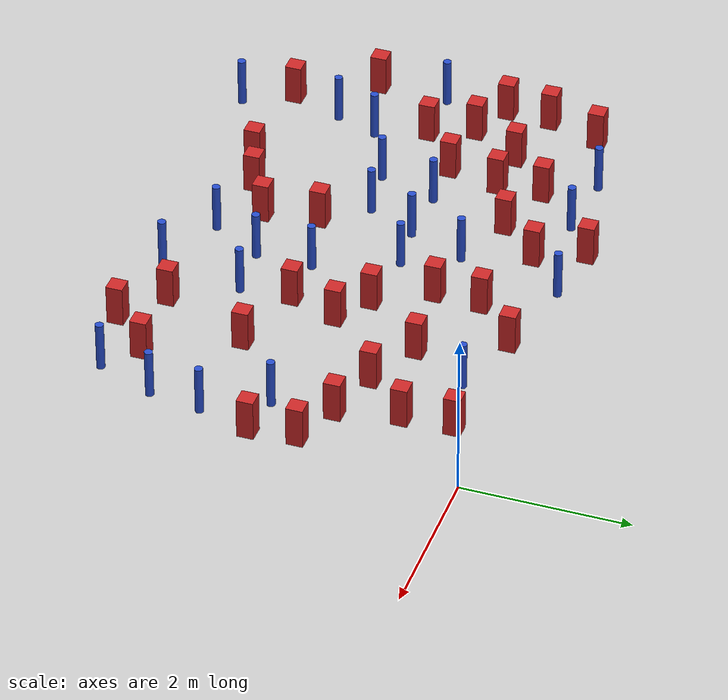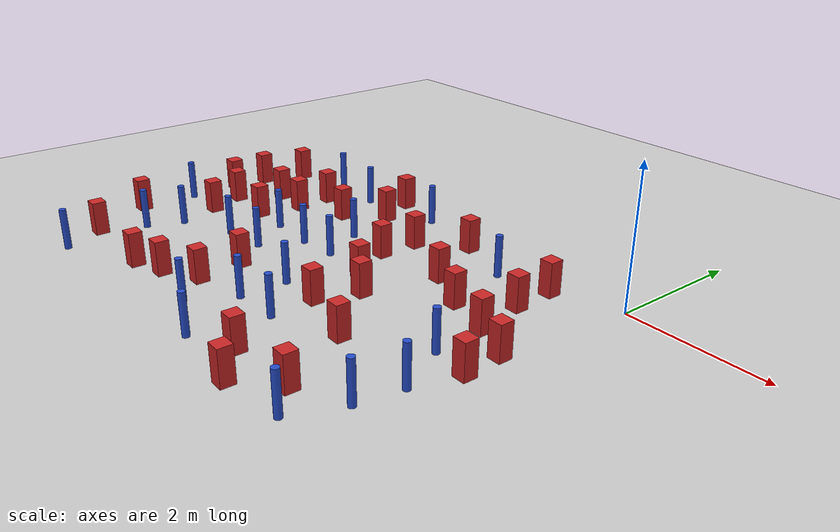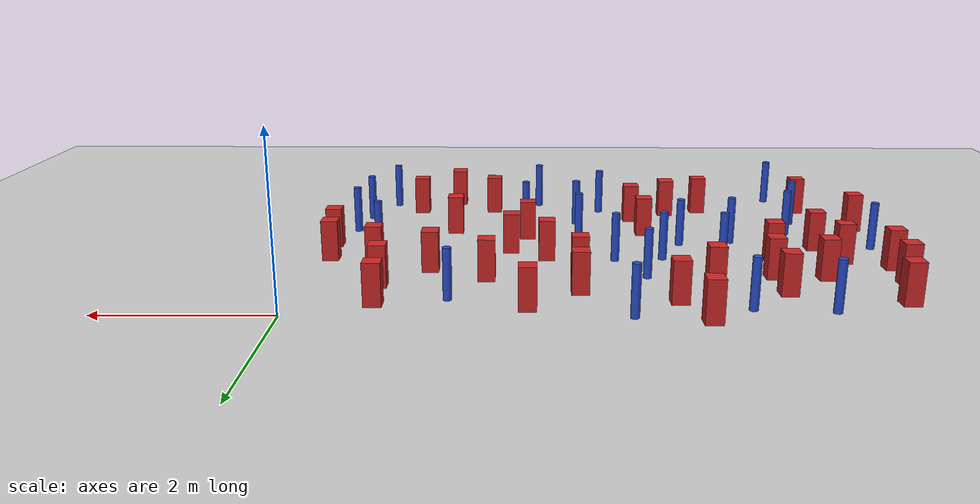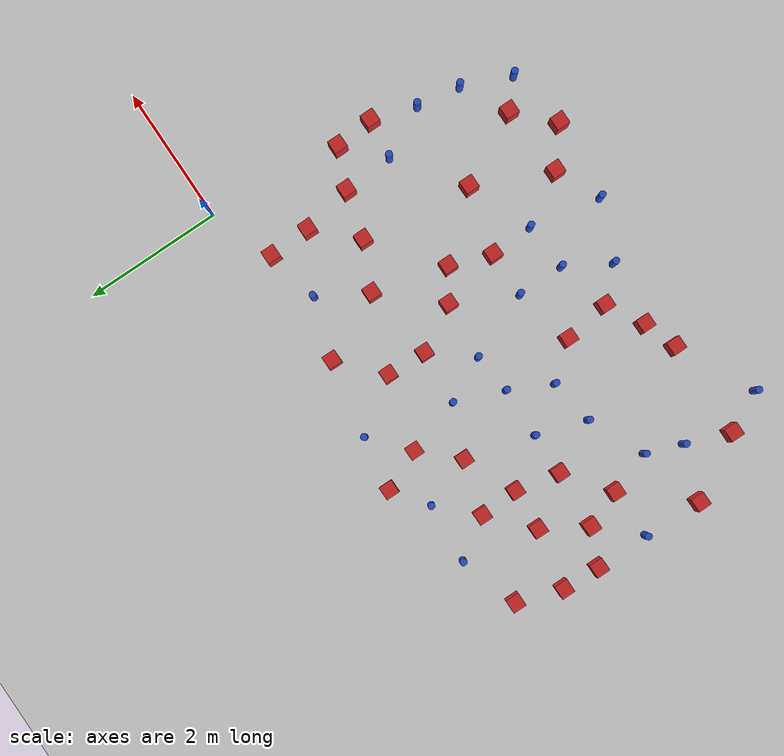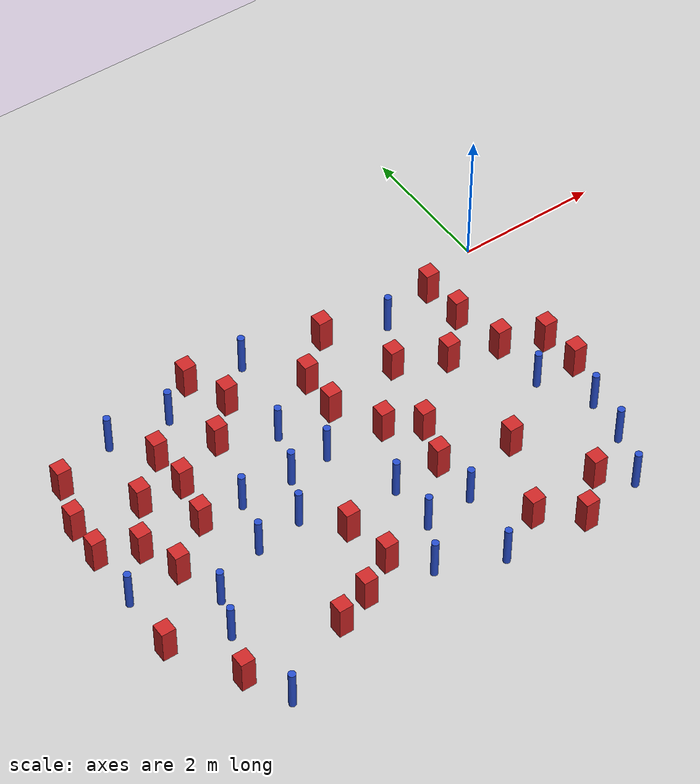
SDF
<sdf version="1.6">
 <world name="default">
  <model name="ground_plane">
   <static>1</static>
   <link name="link">
    <collision name="collision">
     <geometry><plane><normal>0 0 1</normal><size>100 100</size></plane></geometry>
     <surface><friction><ode><mu>100</mu><mu2>50</mu2></ode></friction></surface>
    </collision>
    <visual name="visual">
     <cast_shadows>0</cast_shadows>
     <geometry><plane><normal>0 0 1</normal><size>100 100</size></plane></geometry>
     <material>
      <ambient>1.0 1.0 1.0 1.0</ambient>
      <diffuse>0.8 0.8 0.8 1.0</diffuse>
      <specular>0.01 0.01 0.01 1.000000</specular>
     </material>
    </visual>
   </link>
  </model>
  <model name="square_post_obstacle0">
   <static>true</static>
   <pose>-1.66363238739 -3.12677479647 -4.36207812815e-07 3.75137919937e-06 9.77721102514e-07 2.47381364184e-05</pose>
   <link name="link">
    <pose>0 0 0.25 0 -0 0</pose>
    <inertial>
     <mass>100</mass>
     <inertia>
      <ixx>0.166667</ixx>
      <ixy>0</ixy>
      <ixz>0</ixz>
      <iyy>0.166667</iyy>
      <iyz>0</iyz>
      <izz>0.166667</izz>
     </inertia>
    </inertial>
    <collision name="collision"><geometry><box><size>.2 .2 .5</size></box></geometry></collision>
    <visual name="visual">
     <geometry><box><size>.2 .2 .5</size></box></geometry>
     <material>
      <script><name>Gazebo/Red</name><uri>file://media/materials/scripts/gazebo.material</uri></script>
     </material>
    </visual>
   </link>
  </model>
  <model name="square_post_obstacle5">
   <static>true</static>
   <pose>-6.45985207222 -4.20283826774 -4.36207812815e-07 3.75137919937e-06 9.77721102514e-07 2.47381364184e-05</pose>
   <link name="link">
    <pose>0 0 0.25 0 -0 0</pose>
    <inertial>
     <mass>100</mass>
     <inertia>
      <ixx>0.166667</ixx>
      <ixy>0</ixy>
      <ixz>0</ixz>
      <iyy>0.166667</iyy>
      <iyz>0</iyz>
      <izz>0.166667</izz>
     </inertia>
    </inertial>
    <collision name="collision"><geometry><box><size>.2 .2 .5</size></box></geometry></collision>
    <visual name="visual">
     <geometry><box><size>.2 .2 .5</size></box></geometry>
     <material>
      <script><name>Gazebo/Red</name><uri>file://media/materials/scripts/gazebo.material</uri></script>
     </material>
    </visual>
   </link>
  </model>
  <model name="square_post_obstacle11">
   <static>true</static>
   <pose>-3.21177201463 -1.34164451892 -4.36207812815e-07 3.75137919937e-06 9.77721102514e-07 2.47381364184e-05</pose>
   <link name="link">
    <pose>0 0 0.25 0 -0 0</pose>
    <inertial>
     <mass>100</mass>
     <inertia>
      <ixx>0.166667</ixx>
      <ixy>0</ixy>
      <ixz>0</ixz>
      <iyy>0.166667</iyy>
      <iyz>0</iyz>
      <izz>0.166667</izz>
     </inertia>
    </inertial>
    <collision name="collision"><geometry><box><size>.2 .2 .5</size></box></geometry></collision>
    <visual name="visual">
     <geometry><box><size>.2 .2 .5</size></box></geometry>
     <material>
      <script><name>Gazebo/Red</name><uri>file://media/materials/scripts/gazebo.material</uri></script>
     </material>
    </visual>
   </link>
  </model>
  <model name="pole_obstacle14">
   <static>true</static>
   <pose>-3.64864433912 -4.18007978093 -3.09024884793e-07 -7.19054271912e-07 -2.11315075134e-07 -1.93935509266e-07</pose>
   <link name="link">
    <pose>0 0 0.3 0 -0 0</pose>
    <inertial>
     <mass>1</mass>
     <inertia><ixx>0.145833</ixx><ixy>0</ixy><ixz>0</ixz><iyy>0.145833</iyy><iyz>0</iyz><izz>0.125</izz></inertia>
    </inertial>
    <collision name="collision">
     <geometry><cylinder><radius>0.05</radius><length>.6</length></cylinder></geometry>
    </collision>
    <visual name="visual">
     <geometry><cylinder><radius>0.05</radius><length>.6</length></cylinder></geometry>
     <material>
      <script><name>Gazebo/Blue</name><uri>file://media/materials/scripts/gazebo.material</uri></script>
     </material>
    </visual>
   </link>
  </model>
  <model name="square_post_obstacle12">
   <static>true</static>
   <pose>-4.57360559203 -4.0499223594 -4.36207812815e-07 3.75137919937e-06 9.77721102514e-07 2.47381364184e-05</pose>
   <link name="link">
    <pose>0 0 0.25 0 -0 0</pose>
    <inertial>
     <mass>100</mass>
     <inertia>
      <ixx>0.166667</ixx>
      <ixy>0</ixy>
      <ixz>0</ixz>
      <iyy>0.166667</iyy>
      <iyz>0</iyz>
      <izz>0.166667</izz>
     </inertia>
    </inertial>
    <collision name="collision"><geometry><box><size>.2 .2 .5</size></box></geometry></collision>
    <visual name="visual">
     <geometry><box><size>.2 .2 .5</size></box></geometry>
     <material>
      <script><name>Gazebo/Red</name><uri>file://media/materials/scripts/gazebo.material</uri></script>
     </material>
    </visual>
   </link>
  </model>
  <model name="square_post_obstacle13">
   <static>true</static>
   <pose>-2.62023415638 -2.87275830465 -4.36207812815e-07 3.75137919937e-06 9.77721102514e-07 2.47381364184e-05</pose>
   <link name="link">
    <pose>0 0 0.25 0 -0 0</pose>
    <inertial>
     <mass>100</mass>
     <inertia>
      <ixx>0.166667</ixx>
      <ixy>0</ixy>
      <ixz>0</ixz>
      <iyy>0.166667</iyy>
      <iyz>0</iyz>
      <izz>0.166667</izz>
     </inertia>
    </inertial>
    <collision name="collision"><geometry><box><size>.2 .2 .5</size></box></geometry></collision>
    <visual name="visual">
     <geometry><box><size>.2 .2 .5</size></box></geometry>
     <material>
      <script><name>Gazebo/Red</name><uri>file://media/materials/scripts/gazebo.material</uri></script>
     </material>
    </visual>
   </link>
  </model>
  <model name="pole_obstacle21">
   <static>true</static>
   <pose>-2.80080425089 -4.53551060787 -3.09024884793e-07 -7.19054271912e-07 -2.11315075134e-07 -1.93935509266e-07</pose>
   <link name="link">
    <pose>0 0 0.3 0 -0 0</pose>
    <inertial>
     <mass>1</mass>
     <inertia><ixx>0.145833</ixx><ixy>0</ixy><ixz>0</ixz><iyy>0.145833</iyy><iyz>0</iyz><izz>0.125</izz></inertia>
    </inertial>
    <collision name="collision">
     <geometry><cylinder><radius>0.05</radius><length>.6</length></cylinder></geometry>
    </collision>
    <visual name="visual">
     <geometry><cylinder><radius>0.05</radius><length>.6</length></cylinder></geometry>
     <material>
      <script><name>Gazebo/Blue</name><uri>file://media/materials/scripts/gazebo.material</uri></script>
     </material>
    </visual>
   </link>
  </model>
  <model name="pole_obstacle24">
   <static>true</static>
   <pose>-1.72728421698 -0.518795387424 -3.09024884793e-07 -7.19054271912e-07 -2.11315075135e-07 -1.93935509266e-07</pose>
   <link name="link">
    <pose>0 0 0.3 0 -0 0</pose>
    <inertial>
     <mass>1</mass>
     <inertia><ixx>0.145833</ixx><ixy>0</ixy><ixz>0</ixz><iyy>0.145833</iyy><iyz>0</iyz><izz>0.125</izz></inertia>
    </inertial>
    <collision name="collision">
     <geometry><cylinder><radius>0.05</radius><length>.6</length></cylinder></geometry>
    </collision>
    <visual name="visual">
     <geometry><cylinder><radius>0.05</radius><length>.6</length></cylinder></geometry>
     <material>
      <script><name>Gazebo/Blue</name><uri>file://media/materials/scripts/gazebo.material</uri></script>
     </material>
    </visual>
   </link>
  </model>
  <model name="pole_obstacle28">
   <static>true</static>
   <pose>-0.349268798113 -3.16335764836 -3.09024884793e-07 -7.19054271912e-07 -2.11315075129e-07 -1.93935509263e-07</pose>
   <link name="link">
    <pose>0 0 0.3 0 -0 0</pose>
    <inertial>
     <mass>1</mass>
     <inertia><ixx>0.145833</ixx><ixy>0</ixy><ixz>0</ixz><iyy>0.145833</iyy><iyz>0</iyz><izz>0.125</izz></inertia>
    </inertial>
    <collision name="collision">
     <geometry><cylinder><radius>0.05</radius><length>.6</length></cylinder></geometry>
    </collision>
    <visual name="visual">
     <geometry><cylinder><radius>0.05</radius><length>.6</length></cylinder></geometry>
     <material>
      <script><name>Gazebo/Blue</name><uri>file://media/materials/scripts/gazebo.material</uri></script>
     </material>
    </visual>
   </link>
  </model>
  <model name="square_post_obstacle25">
   <static>true</static>
   <pose>-5.05934929009 -4.2209491107 -4.36207812815e-07 3.75137919937e-06 9.77721102514e-07 2.47381364184e-05</pose>
   <link name="link">
    <pose>0 0 0.25 0 -0 0</pose>
    <inertial>
     <mass>100</mass>
     <inertia>
      <ixx>0.166667</ixx>
      <ixy>0</ixy>
      <ixz>0</ixz>
      <iyy>0.166667</iyy>
      <iyz>0</iyz>
      <izz>0.166667</izz>
     </inertia>
    </inertial>
    <collision name="collision"><geometry><box><size>.2 .2 .5</size></box></geometry></collision>
    <visual name="visual">
     <geometry><box><size>.2 .2 .5</size></box></geometry>
     <material>
      <script><name>Gazebo/Red</name><uri>file://media/materials/scripts/gazebo.material</uri></script>
     </material>
    </visual>
   </link>
  </model>
  <model name="pole_obstacle36">
   <static>true</static>
   <pose>-6.17183847004 -4.78934028438 -3.09024884793e-07 -7.19054271911e-07 -2.1131507516e-07 -1.93935509277e-07</pose>
   <link name="link">
    <pose>0 0 0.3 0 -0 0</pose>
    <inertial>
     <mass>1</mass>
     <inertia><ixx>0.145833</ixx><ixy>0</ixy><ixz>0</ixz><iyy>0.145833</iyy><iyz>0</iyz><izz>0.125</izz></inertia>
    </inertial>
    <collision name="collision">
     <geometry><cylinder><radius>0.05</radius><length>.6</length></cylinder></geometry>
    </collision>
    <visual name="visual">
     <geometry><cylinder><radius>0.05</radius><length>.6</length></cylinder></geometry>
     <material>
      <script><name>Gazebo/Blue</name><uri>file://media/materials/scripts/gazebo.material</uri></script>
     </material>
    </visual>
   </link>
  </model>
  <model name="square_post_obstacle33">
   <static>true</static>
   <pose>-6.709516114 -0.460691681215 -4.36207812815e-07 3.75137919937e-06 9.77721102514e-07 2.47381364184e-05</pose>
   <link name="link">
    <pose>0 0 0.25 0 -0 0</pose>
    <inertial>
     <mass>100</mass>
     <inertia>
      <ixx>0.166667</ixx>
      <ixy>0</ixy>
      <ixz>0</ixz>
      <iyy>0.166667</iyy>
      <iyz>0</iyz>
      <izz>0.166667</izz>
     </inertia>
    </inertial>
    <collision name="collision"><geometry><box><size>.2 .2 .5</size></box></geometry></collision>
    <visual name="visual">
     <geometry><box><size>.2 .2 .5</size></box></geometry>
     <material>
      <script><name>Gazebo/Red</name><uri>file://media/materials/scripts/gazebo.material</uri></script>
     </material>
    </visual>
   </link>
  </model>
  <model name="square_post_obstacle39">
   <static>true</static>
   <pose>-4.15075987012 -3.07539975549 -4.36207812815e-07 3.75137919937e-06 9.77721102514e-07 2.47381364184e-05</pose>
   <link name="link">
    <pose>0 0 0.25 0 -0 0</pose>
    <inertial>
     <mass>100</mass>
     <inertia>
      <ixx>0.166667</ixx>
      <ixy>0</ixy>
      <ixz>0</ixz>
      <iyy>0.166667</iyy>
      <iyz>0</iyz>
      <izz>0.166667</izz>
     </inertia>
    </inertial>
    <collision name="collision"><geometry><box><size>.2 .2 .5</size></box></geometry></collision>
    <visual name="visual">
     <geometry><box><size>.2 .2 .5</size></box></geometry>
     <material>
      <script><name>Gazebo/Red</name><uri>file://media/materials/scripts/gazebo.material</uri></script>
     </material>
    </visual>
   </link>
  </model>
  <model name="pole_obstacle56">
   <static>true</static>
   <pose>-6.22502900379 -3.57008033658 -3.09024884793e-07 -7.19054271912e-07 -2.11315075144e-07 -1.93935509269e-07</pose>
   <link name="link">
    <pose>0 0 0.3 0 -0 0</pose>
    <inertial>
     <mass>1</mass>
     <inertia><ixx>0.145833</ixx><ixy>0</ixy><ixz>0</ixz><iyy>0.145833</iyy><iyz>0</iyz><izz>0.125</izz></inertia>
    </inertial>
    <collision name="collision">
     <geometry><cylinder><radius>0.05</radius><length>.6</length></cylinder></geometry>
    </collision>
    <visual name="visual">
     <geometry><cylinder><radius>0.05</radius><length>.6</length></cylinder></geometry>
     <material>
      <script><name>Gazebo/Blue</name><uri>file://media/materials/scripts/gazebo.material</uri></script>
     </material>
    </visual>
   </link>
  </model>
  <model name="square_post_obstacle45">
   <static>true</static>
   <pose>-5.45975131816 -1.3115869335 -4.36207812815e-07 3.75137919937e-06 9.77721102514e-07 2.47381364184e-05</pose>
   <link name="link">
    <pose>0 0 0.25 0 -0 0</pose>
    <inertial>
     <mass>100</mass>
     <inertia>
      <ixx>0.166667</ixx>
      <ixy>0</ixy>
      <ixz>0</ixz>
      <iyy>0.166667</iyy>
      <iyz>0</iyz>
      <izz>0.166667</izz>
     </inertia>
    </inertial>
    <collision name="collision"><geometry><box><size>.2 .2 .5</size></box></geometry></collision>
    <visual name="visual">
     <geometry><box><size>.2 .2 .5</size></box></geometry>
     <material>
      <script><name>Gazebo/Red</name><uri>file://media/materials/scripts/gazebo.material</uri></script>
     </material>
    </visual>
   </link>
  </model>
  <model name="pole_obstacle60">
   <static>true</static>
   <pose>-3.99176292669 -1.28152382813 -3.09024884793e-07 -7.19054271912e-07 -2.11315075136e-07 -1.93935509266e-07</pose>
   <link name="link">
    <pose>0 0 0.3 0 -0 0</pose>
    <inertial>
     <mass>1</mass>
     <inertia><ixx>0.145833</ixx><ixy>0</ixy><ixz>0</ixz><iyy>0.145833</iyy><iyz>0</iyz><izz>0.125</izz></inertia>
    </inertial>
    <collision name="collision">
     <geometry><cylinder><radius>0.05</radius><length>.6</length></cylinder></geometry>
    </collision>
    <visual name="visual">
     <geometry><cylinder><radius>0.05</radius><length>.6</length></cylinder></geometry>
     <material>
      <script><name>Gazebo/Blue</name><uri>file://media/materials/scripts/gazebo.material</uri></script>
     </material>
    </visual>
   </link>
  </model>
  <model name="square_post_obstacle51">
   <static>true</static>
   <pose>-2.13102680768 -1.20516621205 -4.36207812815e-07 3.75137919937e-06 9.77721102514e-07 2.47381364184e-05</pose>
   <link name="link">
    <pose>0 0 0.25 0 -0 0</pose>
    <inertial>
     <mass>100</mass>
     <inertia>
      <ixx>0.166667</ixx>
      <ixy>0</ixy>
      <ixz>0</ixz>
      <iyy>0.166667</iyy>
      <iyz>0</iyz>
      <izz>0.166667</izz>
     </inertia>
    </inertial>
    <collision name="collision"><geometry><box><size>.2 .2 .5</size></box></geometry></collision>
    <visual name="visual">
     <geometry><box><size>.2 .2 .5</size></box></geometry>
     <material>
      <script><name>Gazebo/Red</name><uri>file://media/materials/scripts/gazebo.material</uri></script>
     </material>
    </visual>
   </link>
  </model>
  <model name="square_post_obstacle53">
   <static>true</static>
   <pose>-5.59745542909 -1.9447270351 -4.36207812815e-07 3.75137919937e-06 9.77721102514e-07 2.47381364184e-05</pose>
   <link name="link">
    <pose>0 0 0.25 0 -0 0</pose>
    <inertial>
     <mass>100</mass>
     <inertia>
      <ixx>0.166667</ixx>
      <ixy>0</ixy>
      <ixz>0</ixz>
      <iyy>0.166667</iyy>
      <iyz>0</iyz>
      <izz>0.166667</izz>
     </inertia>
    </inertial>
    <collision name="collision"><geometry><box><size>.2 .2 .5</size></box></geometry></collision>
    <visual name="visual">
     <geometry><box><size>.2 .2 .5</size></box></geometry>
     <material>
      <script><name>Gazebo/Red</name><uri>file://media/materials/scripts/gazebo.material</uri></script>
     </material>
    </visual>
   </link>
  </model>
  <model name="square_post_obstacle58">
   <static>true</static>
   <pose>-1.46072311342 -1.5189008634 -4.36207812815e-07 3.75137919937e-06 9.77721102514e-07 2.47381364184e-05</pose>
   <link name="link">
    <pose>0 0 0.25 0 -0 0</pose>
    <inertial>
     <mass>100</mass>
     <inertia>
      <ixx>0.166667</ixx>
      <ixy>0</ixy>
      <ixz>0</ixz>
      <iyy>0.166667</iyy>
      <iyz>0</iyz>
      <izz>0.166667</izz>
     </inertia>
    </inertial>
    <collision name="collision"><geometry><box><size>.2 .2 .5</size></box></geometry></collision>
    <visual name="visual">
     <geometry><box><size>.2 .2 .5</size></box></geometry>
     <material>
      <script><name>Gazebo/Red</name><uri>file://media/materials/scripts/gazebo.material</uri></script>
     </material>
    </visual>
   </link>
  </model>
  <model name="square_post_obstacle59">
   <static>true</static>
   <pose>-2.59360439712 -0.243297136164 -4.36207812815e-07 3.75137919937e-06 9.77721102514e-07 2.47381364184e-05</pose>
   <link name="link">
    <pose>0 0 0.25 0 -0 0</pose>
    <inertial>
     <mass>100</mass>
     <inertia>
      <ixx>0.166667</ixx>
      <ixy>0</ixy>
      <ixz>0</ixz>
      <iyy>0.166667</iyy>
      <iyz>0</iyz>
      <izz>0.166667</izz>
     </inertia>
    </inertial>
    <collision name="collision"><geometry><box><size>.2 .2 .5</size></box></geometry></collision>
    <visual name="visual">
     <geometry><box><size>.2 .2 .5</size></box></geometry>
     <material>
      <script><name>Gazebo/Red</name><uri>file://media/materials/scripts/gazebo.material</uri></script>
     </material>
    </visual>
   </link>
  </model>
  <model name="square_post_obstacle62">
   <static>true</static>
   <pose>-4.05167921812 -3.74811377901 -4.36207812815e-07 3.75137919937e-06 9.77721102514e-07 2.47381364184e-05</pose>
   <link name="link">
    <pose>0 0 0.25 0 -0 0</pose>
    <inertial>
     <mass>100</mass>
     <inertia>
      <ixx>0.166667</ixx>
      <ixy>0</ixy>
      <ixz>0</ixz>
      <iyy>0.166667</iyy>
      <iyz>0</iyz>
      <izz>0.166667</izz>
     </inertia>
    </inertial>
    <collision name="collision"><geometry><box><size>.2 .2 .5</size></box></geometry></collision>
    <visual name="visual">
     <geometry><box><size>.2 .2 .5</size></box></geometry>
     <material>
      <script><name>Gazebo/Red</name><uri>file://media/materials/scripts/gazebo.material</uri></script>
     </material>
    </visual>
   </link>
  </model>
  <model name="pole_obstacle77">
   <static>true</static>
   <pose>-3.28531456576 -2.87144950809 -3.09024884793e-07 -7.19054271912e-07 -2.11315075128e-07 -1.93935509262e-07</pose>
   <link name="link">
    <pose>0 0 0.3 0 -0 0</pose>
    <inertial>
     <mass>1</mass>
     <inertia><ixx>0.145833</ixx><ixy>0</ixy><ixz>0</ixz><iyy>0.145833</iyy><iyz>0</iyz><izz>0.125</izz></inertia>
    </inertial>
    <collision name="collision">
     <geometry><cylinder><radius>0.05</radius><length>.6</length></cylinder></geometry>
    </collision>
    <visual name="visual">
     <geometry><cylinder><radius>0.05</radius><length>.6</length></cylinder></geometry>
     <material>
      <script><name>Gazebo/Blue</name><uri>file://media/materials/scripts/gazebo.material</uri></script>
     </material>
    </visual>
   </link>
  </model>
  <model name="square_post_obstacle67">
   <static>true</static>
   <pose>-1.6345298018 -4.63993090161 -4.36207812815e-07 3.75137919937e-06 9.77721102514e-07 2.47381364184e-05</pose>
   <link name="link">
    <pose>0 0 0.25 0 -0 0</pose>
    <inertial>
     <mass>100</mass>
     <inertia>
      <ixx>0.166667</ixx>
      <ixy>0</ixy>
      <ixz>0</ixz>
      <iyy>0.166667</iyy>
      <iyz>0</iyz>
      <izz>0.166667</izz>
     </inertia>
    </inertial>
    <collision name="collision"><geometry><box><size>.2 .2 .5</size></box></geometry></collision>
    <visual name="visual">
     <geometry><box><size>.2 .2 .5</size></box></geometry>
     <material>
      <script><name>Gazebo/Red</name><uri>file://media/materials/scripts/gazebo.material</uri></script>
     </material>
    </visual>
   </link>
  </model>
  <model name="square_post_obstacle70">
   <static>true</static>
   <pose>-0.915117152222 -0.969512618069 -4.36207812815e-07 3.75137919937e-06 9.77721102514e-07 2.47381364184e-05</pose>
   <link name="link">
    <pose>0 0 0.25 0 -0 0</pose>
    <inertial>
     <mass>100</mass>
     <inertia>
      <ixx>0.166667</ixx>
      <ixy>0</ixy>
      <ixz>0</ixz>
      <iyy>0.166667</iyy>
      <iyz>0</iyz>
      <izz>0.166667</izz>
     </inertia>
    </inertial>
    <collision name="collision"><geometry><box><size>.2 .2 .5</size></box></geometry></collision>
    <visual name="visual">
     <geometry><box><size>.2 .2 .5</size></box></geometry>
     <material>
      <script><name>Gazebo/Red</name><uri>file://media/materials/scripts/gazebo.material</uri></script>
     </material>
    </visual>
   </link>
  </model>
  <model name="square_post_obstacle77">
   <static>true</static>
   <pose>-4.71757970992 -0.975675801055 -4.36207812815e-07 3.75137919937e-06 9.77721102514e-07 2.47381364184e-05</pose>
   <link name="link">
    <pose>0 0 0.25 0 -0 0</pose>
    <inertial>
     <mass>100</mass>
     <inertia>
      <ixx>0.166667</ixx>
      <ixy>0</ixy>
      <ixz>0</ixz>
      <iyy>0.166667</iyy>
      <iyz>0</iyz>
      <izz>0.166667</izz>
     </inertia>
    </inertial>
    <collision name="collision"><geometry><box><size>.2 .2 .5</size></box></geometry></collision>
    <visual name="visual">
     <geometry><box><size>.2 .2 .5</size></box></geometry>
     <material>
      <script><name>Gazebo/Red</name><uri>file://media/materials/scripts/gazebo.material</uri></script>
     </material>
    </visual>
   </link>
  </model>
  <model name="square_post_obstacle80">
   <static>true</static>
   <pose>-2.84373259791 -1.98774318029 -4.36207812815e-07 3.75137919937e-06 9.77721102514e-07 2.47381364184e-05</pose>
   <link name="link">
    <pose>0 0 0.25 0 -0 0</pose>
    <inertial>
     <mass>100</mass>
     <inertia>
      <ixx>0.166667</ixx>
      <ixy>0</ixy>
      <ixz>0</ixz>
      <iyy>0.166667</iyy>
      <iyz>0</iyz>
      <izz>0.166667</izz>
     </inertia>
    </inertial>
    <collision name="collision"><geometry><box><size>.2 .2 .5</size></box></geometry></collision>
    <visual name="visual">
     <geometry><box><size>.2 .2 .5</size></box></geometry>
     <material>
      <script><name>Gazebo/Red</name><uri>file://media/materials/scripts/gazebo.material</uri></script>
     </material>
    </visual>
   </link>
  </model>
  <model name="square_post_obstacle85">
   <static>true</static>
   <pose>-0.203899461189 -1.94986920182 -4.36207812815e-07 3.75137919937e-06 9.77721102514e-07 2.47381364184e-05</pose>
   <link name="link">
    <pose>0 0 0.25 0 -0 0</pose>
    <inertial>
     <mass>100</mass>
     <inertia>
      <ixx>0.166667</ixx>
      <ixy>0</ixy>
      <ixz>0</ixz>
      <iyy>0.166667</iyy>
      <iyz>0</iyz>
      <izz>0.166667</izz>
     </inertia>
    </inertial>
    <collision name="collision"><geometry><box><size>.2 .2 .5</size></box></geometry></collision>
    <visual name="visual">
     <geometry><box><size>.2 .2 .5</size></box></geometry>
     <material>
      <script><name>Gazebo/Red</name><uri>file://media/materials/scripts/gazebo.material</uri></script>
     </material>
    </visual>
   </link>
  </model>
  <model name="pole_obstacle92">
   <static>true</static>
   <pose>-5.85168144351 -0.184683949919 -3.09024884793e-07 -7.19054271912e-07 -2.11315075122e-07 -1.9393550926e-07</pose>
   <link name="link">
    <pose>0 0 0.3 0 -0 0</pose>
    <inertial>
     <mass>1</mass>
     <inertia><ixx>0.145833</ixx><ixy>0</ixy><ixz>0</ixz><iyy>0.145833</iyy><iyz>0</iyz><izz>0.125</izz></inertia>
    </inertial>
    <collision name="collision">
     <geometry><cylinder><radius>0.05</radius><length>.6</length></cylinder></geometry>
    </collision>
    <visual name="visual">
     <geometry><cylinder><radius>0.05</radius><length>.6</length></cylinder></geometry>
     <material>
      <script><name>Gazebo/Blue</name><uri>file://media/materials/scripts/gazebo.material</uri></script>
     </material>
    </visual>
   </link>
  </model>
  <model name="square_post_obstacle88">
   <static>true</static>
   <pose>-3.18391750166 -0.768265593383 -4.36207812815e-07 3.75137919937e-06 9.77721102514e-07 2.47381364184e-05</pose>
   <link name="link">
    <pose>0 0 0.25 0 -0 0</pose>
    <inertial>
     <mass>100</mass>
     <inertia>
      <ixx>0.166667</ixx>
      <ixy>0</ixy>
      <ixz>0</ixz>
      <iyy>0.166667</iyy>
      <iyz>0</iyz>
      <izz>0.166667</izz>
     </inertia>
    </inertial>
    <collision name="collision"><geometry><box><size>.2 .2 .5</size></box></geometry></collision>
    <visual name="visual">
     <geometry><box><size>.2 .2 .5</size></box></geometry>
     <material>
      <script><name>Gazebo/Red</name><uri>file://media/materials/scripts/gazebo.material</uri></script>
     </material>
    </visual>
   </link>
  </model>
  <model name="pole_obstacle97">
   <static>true</static>
   <pose>-3.28604217651 -3.55535215484 -3.09024884793e-07 -7.19054271912e-07 -2.11315075128e-07 -1.93935509262e-07</pose>
   <link name="link">
    <pose>0 0 0.3 0 -0 0</pose>
    <inertial>
     <mass>1</mass>
     <inertia><ixx>0.145833</ixx><ixy>0</ixy><ixz>0</ixz><iyy>0.145833</iyy><iyz>0</iyz><izz>0.125</izz></inertia>
    </inertial>
    <collision name="collision">
     <geometry><cylinder><radius>0.05</radius><length>.6</length></cylinder></geometry>
    </collision>
    <visual name="visual">
     <geometry><cylinder><radius>0.05</radius><length>.6</length></cylinder></geometry>
     <material>
      <script><name>Gazebo/Blue</name><uri>file://media/materials/scripts/gazebo.material</uri></script>
     </material>
    </visual>
   </link>
  </model>
  <model name="pole_obstacle101">
   <static>true</static>
   <pose>-4.56110177725 -2.57934336364 -3.09024884793e-07 -7.19054271912e-07 -2.11315075144e-07 -1.93935509269e-07</pose>
   <link name="link">
    <pose>0 0 0.3 0 -0 0</pose>
    <inertial>
     <mass>1</mass>
     <inertia><ixx>0.145833</ixx><ixy>0</ixy><ixz>0</ixz><iyy>0.145833</iyy><iyz>0</iyz><izz>0.125</izz></inertia>
    </inertial>
    <collision name="collision">
     <geometry><cylinder><radius>0.05</radius><length>.6</length></cylinder></geometry>
    </collision>
    <visual name="visual">
     <geometry><cylinder><radius>0.05</radius><length>.6</length></cylinder></geometry>
     <material>
      <script><name>Gazebo/Blue</name><uri>file://media/materials/scripts/gazebo.material</uri></script>
     </material>
    </visual>
   </link>
  </model>
  <model name="square_post_obstacle93">
   <static>true</static>
   <pose>-6.43298313865 -1.88822749999 -4.36207812815e-07 3.75137919937e-06 9.77721102514e-07 2.47381364184e-05</pose>
   <link name="link">
    <pose>0 0 0.25 0 -0 0</pose>
    <inertial>
     <mass>100</mass>
     <inertia>
      <ixx>0.166667</ixx>
      <ixy>0</ixy>
      <ixz>0</ixz>
      <iyy>0.166667</iyy>
      <iyz>0</iyz>
      <izz>0.166667</izz>
     </inertia>
    </inertial>
    <collision name="collision"><geometry><box><size>.2 .2 .5</size></box></geometry></collision>
    <visual name="visual">
     <geometry><box><size>.2 .2 .5</size></box></geometry>
     <material>
      <script><name>Gazebo/Red</name><uri>file://media/materials/scripts/gazebo.material</uri></script>
     </material>
    </visual>
   </link>
  </model>
  <model name="square_post_obstacle98">
   <static>true</static>
   <pose>-5.48173853737 -0.753076886505 -4.36207812815e-07 3.75137919937e-06 9.77721102514e-07 2.47381364184e-05</pose>
   <link name="link">
    <pose>0 0 0.25 0 -0 0</pose>
    <inertial>
     <mass>100</mass>
     <inertia>
      <ixx>0.166667</ixx>
      <ixy>0</ixy>
      <ixz>0</ixz>
      <iyy>0.166667</iyy>
      <iyz>0</iyz>
      <izz>0.166667</izz>
     </inertia>
    </inertial>
    <collision name="collision"><geometry><box><size>.2 .2 .5</size></box></geometry></collision>
    <visual name="visual">
     <geometry><box><size>.2 .2 .5</size></box></geometry>
     <material>
      <script><name>Gazebo/Red</name><uri>file://media/materials/scripts/gazebo.material</uri></script>
     </material>
    </visual>
   </link>
  </model>
  <model name="pole_obstacle105">
   <static>true</static>
   <pose>-5.22519563417 -2.67451113795 -3.09024884793e-07 -7.19054271912e-07 -2.11315075144e-07 -1.93935509269e-07</pose>
   <link name="link">
    <pose>0 0 0.3 0 -0 0</pose>
    <inertial>
     <mass>1</mass>
     <inertia><ixx>0.145833</ixx><ixy>0</ixy><ixz>0</ixz><iyy>0.145833</iyy><iyz>0</iyz><izz>0.125</izz></inertia>
    </inertial>
    <collision name="collision">
     <geometry><cylinder><radius>0.05</radius><length>.6</length></cylinder></geometry>
    </collision>
    <visual name="visual">
     <geometry><cylinder><radius>0.05</radius><length>.6</length></cylinder></geometry>
     <material>
      <script><name>Gazebo/Blue</name><uri>file://media/materials/scripts/gazebo.material</uri></script>
     </material>
    </visual>
   </link>
  </model>
  <model name="pole_obstacle108">
   <static>true</static>
   <pose>-3.67455132605 -1.91539817411 -3.09024884793e-07 -7.19054271912e-07 -2.11315075122e-07 -1.93935509259e-07</pose>
   <link name="link">
    <pose>0 0 0.3 0 -0 0</pose>
    <inertial>
     <mass>1</mass>
     <inertia><ixx>0.145833</ixx><ixy>0</ixy><ixz>0</ixz><iyy>0.145833</iyy><iyz>0</iyz><izz>0.125</izz></inertia>
    </inertial>
    <collision name="collision">
     <geometry><cylinder><radius>0.05</radius><length>.6</length></cylinder></geometry>
    </collision>
    <visual name="visual">
     <geometry><cylinder><radius>0.05</radius><length>.6</length></cylinder></geometry>
     <material>
      <script><name>Gazebo/Blue</name><uri>file://media/materials/scripts/gazebo.material</uri></script>
     </material>
    </visual>
   </link>
  </model>
  <model name="square_post_obstacle108">
   <static>true</static>
   <pose>-6.95226991201 -1.65981529937 -4.36207812815e-07 3.75137919937e-06 9.77721102514e-07 2.47381364184e-05</pose>
   <link name="link">
    <pose>0 0 0.25 0 -0 0</pose>
    <inertial>
     <mass>100</mass>
     <inertia>
      <ixx>0.166667</ixx>
      <ixy>0</ixy>
      <ixz>0</ixz>
      <iyy>0.166667</iyy>
      <iyz>0</iyz>
      <izz>0.166667</izz>
     </inertia>
    </inertial>
    <collision name="collision"><geometry><box><size>.2 .2 .5</size></box></geometry></collision>
    <visual name="visual">
     <geometry><box><size>.2 .2 .5</size></box></geometry>
     <material>
      <script><name>Gazebo/Red</name><uri>file://media/materials/scripts/gazebo.material</uri></script>
     </material>
    </visual>
   </link>
  </model>
  <model name="pole_obstacle116">
   <static>true</static>
   <pose>-4.26273575658 -1.97845729783 -3.09024884793e-07 -7.19054271912e-07 -2.11315075115e-07 -1.93935509255e-07</pose>
   <link name="link">
    <pose>0 0 0.3 0 -0 0</pose>
    <inertial>
     <mass>1</mass>
     <inertia><ixx>0.145833</ixx><ixy>0</ixy><ixz>0</ixz><iyy>0.145833</iyy><iyz>0</iyz><izz>0.125</izz></inertia>
    </inertial>
    <collision name="collision">
     <geometry><cylinder><radius>0.05</radius><length>.6</length></cylinder></geometry>
    </collision>
    <visual name="visual">
     <geometry><cylinder><radius>0.05</radius><length>.6</length></cylinder></geometry>
     <material>
      <script><name>Gazebo/Blue</name><uri>file://media/materials/scripts/gazebo.material</uri></script>
     </material>
    </visual>
   </link>
  </model>
  <model name="pole_obstacle119">
   <static>true</static>
   <pose>-4.99129116402 -1.9563843315 -3.09024884793e-07 -7.19054271912e-07 -2.11315075115e-07 -1.93935509255e-07</pose>
   <link name="link">
    <pose>0 0 0.3 0 -0 0</pose>
    <inertial>
     <mass>1</mass>
     <inertia><ixx>0.145833</ixx><ixy>0</ixy><ixz>0</ixz><iyy>0.145833</iyy><iyz>0</iyz><izz>0.125</izz></inertia>
    </inertial>
    <collision name="collision">
     <geometry><cylinder><radius>0.05</radius><length>.6</length></cylinder></geometry>
    </collision>
    <visual name="visual">
     <geometry><cylinder><radius>0.05</radius><length>.6</length></cylinder></geometry>
     <material>
      <script><name>Gazebo/Blue</name><uri>file://media/materials/scripts/gazebo.material</uri></script>
     </material>
    </visual>
   </link>
  </model>
  <model name="pole_obstacle120">
   <static>true</static>
   <pose>-0.451217569921 -3.79895663268 -3.09024884793e-07 -7.19054271912e-07 -2.11315075121e-07 -1.93935509258e-07</pose>
   <link name="link">
    <pose>0 0 0.3 0 -0 0</pose>
    <inertial>
     <mass>1</mass>
     <inertia><ixx>0.145833</ixx><ixy>0</ixy><ixz>0</ixz><iyy>0.145833</iyy><iyz>0</iyz><izz>0.125</izz></inertia>
    </inertial>
    <collision name="collision">
     <geometry><cylinder><radius>0.05</radius><length>.6</length></cylinder></geometry>
    </collision>
    <visual name="visual">
     <geometry><cylinder><radius>0.05</radius><length>.6</length></cylinder></geometry>
     <material>
      <script><name>Gazebo/Blue</name><uri>file://media/materials/scripts/gazebo.material</uri></script>
     </material>
    </visual>
   </link>
  </model>
  <model name="pole_obstacle124">
   <static>true</static>
   <pose>-3.70666092861 -0.0173122774727 -3.09024884793e-07 -7.19054271912e-07 -2.11315075162e-07 -1.93935509281e-07</pose>
   <link name="link">
    <pose>0 0 0.3 0 -0 0</pose>
    <inertial>
     <mass>1</mass>
     <inertia><ixx>0.145833</ixx><ixy>0</ixy><ixz>0</ixz><iyy>0.145833</iyy><iyz>0</iyz><izz>0.125</izz></inertia>
    </inertial>
    <collision name="collision">
     <geometry><cylinder><radius>0.05</radius><length>.6</length></cylinder></geometry>
    </collision>
    <visual name="visual">
     <geometry><cylinder><radius>0.05</radius><length>.6</length></cylinder></geometry>
     <material>
      <script><name>Gazebo/Blue</name><uri>file://media/materials/scripts/gazebo.material</uri></script>
     </material>
    </visual>
   </link>
  </model>
  <model name="pole_obstacle130">
   <static>true</static>
   <pose>-4.98572749112 -0.25136053386 -3.09024884793e-07 -7.19054271912e-07 -2.1131507512e-07 -1.93935509259e-07</pose>
   <link name="link">
    <pose>0 0 0.3 0 -0 0</pose>
    <inertial>
     <mass>1</mass>
     <inertia><ixx>0.145833</ixx><ixy>0</ixy><ixz>0</ixz><iyy>0.145833</iyy><iyz>0</iyz><izz>0.125</izz></inertia>
    </inertial>
    <collision name="collision">
     <geometry><cylinder><radius>0.05</radius><length>.6</length></cylinder></geometry>
    </collision>
    <visual name="visual">
     <geometry><cylinder><radius>0.05</radius><length>.6</length></cylinder></geometry>
     <material>
      <script><name>Gazebo/Blue</name><uri>file://media/materials/scripts/gazebo.material</uri></script>
     </material>
    </visual>
   </link>
  </model>
  <model name="square_post_obstacle130">
   <static>true</static>
   <pose>-0.940988699308 -0.357402718802 -4.36207812815e-07 3.75137919937e-06 9.77721102514e-07 2.47381364184e-05</pose>
   <link name="link">
    <pose>0 0 0.25 0 -0 0</pose>
    <inertial>
     <mass>100</mass>
     <inertia>
      <ixx>0.166667</ixx>
      <ixy>0</ixy>
      <ixz>0</ixz>
      <iyy>0.166667</iyy>
      <iyz>0</iyz>
      <izz>0.166667</izz>
     </inertia>
    </inertial>
    <collision name="collision"><geometry><box><size>.2 .2 .5</size></box></geometry></collision>
    <visual name="visual">
     <geometry><box><size>.2 .2 .5</size></box></geometry>
     <material>
      <script><name>Gazebo/Red</name><uri>file://media/materials/scripts/gazebo.material</uri></script>
     </material>
    </visual>
   </link>
  </model>
  <model name="square_post_obstacle133">
   <static>true</static>
   <pose>-6.92439537412 -1.10971662982 -4.36207812815e-07 3.75137919937e-06 9.77721102514e-07 2.47381364184e-05</pose>
   <link name="link">
    <pose>0 0 0.25 0 -0 0</pose>
    <inertial>
     <mass>100</mass>
     <inertia>
      <ixx>0.166667</ixx>
      <ixy>0</ixy>
      <ixz>0</ixz>
      <iyy>0.166667</iyy>
      <iyz>0</iyz>
      <izz>0.166667</izz>
     </inertia>
    </inertial>
    <collision name="collision"><geometry><box><size>.2 .2 .5</size></box></geometry></collision>
    <visual name="visual">
     <geometry><box><size>.2 .2 .5</size></box></geometry>
     <material>
      <script><name>Gazebo/Red</name><uri>file://media/materials/scripts/gazebo.material</uri></script>
     </material>
    </visual>
   </link>
  </model>
  <model name="pole_obstacle153">
   <static>true</static>
   <pose>-6.03174039339 -3.04817477654 -3.09024884793e-07 -7.19054271912e-07 -2.11315075144e-07 -1.93935509269e-07</pose>
   <link name="link">
    <pose>0 0 0.3 0 -0 0</pose>
    <inertial>
     <mass>1</mass>
     <inertia><ixx>0.145833</ixx><ixy>0</ixy><ixz>0</ixz><iyy>0.145833</iyy><iyz>0</iyz><izz>0.125</izz></inertia>
    </inertial>
    <collision name="collision">
     <geometry><cylinder><radius>0.05</radius><length>.6</length></cylinder></geometry>
    </collision>
    <visual name="visual">
     <geometry><cylinder><radius>0.05</radius><length>.6</length></cylinder></geometry>
     <material>
      <script><name>Gazebo/Blue</name><uri>file://media/materials/scripts/gazebo.material</uri></script>
     </material>
    </visual>
   </link>
  </model>
  <model name="square_post_obstacle161">
   <static>true</static>
   <pose>-6.23043357499 -2.42487222404 -4.36207812815e-07 3.75137919937e-06 9.77721102514e-07 2.47381364184e-05</pose>
   <link name="link">
    <pose>0 0 0.25 0 -0 0</pose>
    <inertial>
     <mass>100</mass>
     <inertia>
      <ixx>0.166667</ixx>
      <ixy>0</ixy>
      <ixz>0</ixz>
      <iyy>0.166667</iyy>
      <iyz>0</iyz>
      <izz>0.166667</izz>
     </inertia>
    </inertial>
    <collision name="collision"><geometry><box><size>.2 .2 .5</size></box></geometry></collision>
    <visual name="visual">
     <geometry><box><size>.2 .2 .5</size></box></geometry>
     <material>
      <script><name>Gazebo/Red</name><uri>file://media/materials/scripts/gazebo.material</uri></script>
     </material>
    </visual>
   </link>
  </model>
  <model name="pole_obstacle172">
   <static>true</static>
   <pose>-2.59848227294 -3.50654239436 -3.09024884793e-07 -7.19054271912e-07 -2.11315075144e-07 -1.93935509271e-07</pose>
   <link name="link">
    <pose>0 0 0.3 0 -0 0</pose>
    <inertial>
     <mass>1</mass>
     <inertia><ixx>0.145833</ixx><ixy>0</ixy><ixz>0</ixz><iyy>0.145833</iyy><iyz>0</iyz><izz>0.125</izz></inertia>
    </inertial>
    <collision name="collision">
     <geometry><cylinder><radius>0.05</radius><length>.6</length></cylinder></geometry>
    </collision>
    <visual name="visual">
     <geometry><cylinder><radius>0.05</radius><length>.6</length></cylinder></geometry>
     <material>
      <script><name>Gazebo/Blue</name><uri>file://media/materials/scripts/gazebo.material</uri></script>
     </material>
    </visual>
   </link>
  </model>
  <model name="square_post_obstacle172">
   <static>true</static>
   <pose>-1.12387694334 -4.1546734404 -4.36207812815e-07 3.75137919937e-06 9.77721102514e-07 2.47381364184e-05</pose>
   <link name="link">
    <pose>0 0 0.25 0 -0 0</pose>
    <inertial>
     <mass>100</mass>
     <inertia>
      <ixx>0.166667</ixx>
      <ixy>0</ixy>
      <ixz>0</ixz>
      <iyy>0.166667</iyy>
      <iyz>0</iyz>
      <izz>0.166667</izz>
     </inertia>
    </inertial>
    <collision name="collision"><geometry><box><size>.2 .2 .5</size></box></geometry></collision>
    <visual name="visual">
     <geometry><box><size>.2 .2 .5</size></box></geometry>
     <material>
      <script><name>Gazebo/Red</name><uri>file://media/materials/scripts/gazebo.material</uri></script>
     </material>
    </visual>
   </link>
  </model>
  <model name="square_post_obstacle173">
   <static>true</static>
   <pose>-2.40903935235 -2.27601763437 -4.36207812815e-07 3.75137919937e-06 9.77721102514e-07 2.47381364184e-05</pose>
   <link name="link">
    <pose>0 0 0.25 0 -0 0</pose>
    <inertial>
     <mass>100</mass>
     <inertia>
      <ixx>0.166667</ixx>
      <ixy>0</ixy>
      <ixz>0</ixz>
      <iyy>0.166667</iyy>
      <iyz>0</iyz>
      <izz>0.166667</izz>
     </inertia>
    </inertial>
    <collision name="collision"><geometry><box><size>.2 .2 .5</size></box></geometry></collision>
    <visual name="visual">
     <geometry><box><size>.2 .2 .5</size></box></geometry>
     <material>
      <script><name>Gazebo/Red</name><uri>file://media/materials/scripts/gazebo.material</uri></script>
     </material>
    </visual>
   </link>
  </model>
  <model name="square_post_obstacle188">
   <static>true</static>
   <pose>-4.2400925365 -0.477710552781 -4.36207812815e-07 3.75137919937e-06 9.77721102514e-07 2.47381364184e-05</pose>
   <link name="link">
    <pose>0 0 0.25 0 -0 0</pose>
    <inertial>
     <mass>100</mass>
     <inertia>
      <ixx>0.166667</ixx>
      <ixy>0</ixy>
      <ixz>0</ixz>
      <iyy>0.166667</iyy>
      <iyz>0</iyz>
      <izz>0.166667</izz>
     </inertia>
    </inertial>
    <collision name="collision"><geometry><box><size>.2 .2 .5</size></box></geometry></collision>
    <visual name="visual">
     <geometry><box><size>.2 .2 .5</size></box></geometry>
     <material>
      <script><name>Gazebo/Red</name><uri>file://media/materials/scripts/gazebo.material</uri></script>
     </material>
    </visual>
   </link>
  </model>
  <model name="square_post_obstacle190">
   <static>true</static>
   <pose>-6.98719196055 -3.29632281281 -4.36207812815e-07 3.75137919937e-06 9.77721102514e-07 2.47381364184e-05</pose>
   <link name="link">
    <pose>0 0 0.25 0 -0 0</pose>
    <inertial>
     <mass>100</mass>
     <inertia>
      <ixx>0.166667</ixx>
      <ixy>0</ixy>
      <ixz>0</ixz>
      <iyy>0.166667</iyy>
      <iyz>0</iyz>
      <izz>0.166667</izz>
     </inertia>
    </inertial>
    <collision name="collision"><geometry><box><size>.2 .2 .5</size></box></geometry></collision>
    <visual name="visual">
     <geometry><box><size>.2 .2 .5</size></box></geometry>
     <material>
      <script><name>Gazebo/Red</name><uri>file://media/materials/scripts/gazebo.material</uri></script>
     </material>
    </visual>
   </link>
  </model>
  <model name="square_post_obstacle193">
   <static>true</static>
   <pose>-6.0585189582 -1.27339329614 -4.36207812815e-07 3.75137919937e-06 9.77721102514e-07 2.47381364184e-05</pose>
   <link name="link">
    <pose>0 0 0.25 0 -0 0</pose>
    <inertial>
     <mass>100</mass>
     <inertia>
      <ixx>0.166667</ixx>
      <ixy>0</ixy>
      <ixz>0</ixz>
      <iyy>0.166667</iyy>
      <iyz>0</iyz>
      <izz>0.166667</izz>
     </inertia>
    </inertial>
    <collision name="collision"><geometry><box><size>.2 .2 .5</size></box></geometry></collision>
    <visual name="visual">
     <geometry><box><size>.2 .2 .5</size></box></geometry>
     <material>
      <script><name>Gazebo/Red</name><uri>file://media/materials/scripts/gazebo.material</uri></script>
     </material>
    </visual>
   </link>
  </model>
  <model name="square_post_obstacle202">
   <static>true</static>
   <pose>-4.48937630168 0.10231884763 -4.36207812815e-07 3.75137919937e-06 9.77721102514e-07 2.47381364184e-05</pose>
   <link name="link">
    <pose>0 0 0.25 0 -0 0</pose>
    <inertial>
     <mass>100</mass>
     <inertia>
      <ixx>0.166667</ixx>
      <ixy>0</ixy>
      <ixz>0</ixz>
      <iyy>0.166667</iyy>
      <iyz>0</iyz>
      <izz>0.166667</izz>
     </inertia>
    </inertial>
    <collision name="collision"><geometry><box><size>.2 .2 .5</size></box></geometry></collision>
    <visual name="visual">
     <geometry><box><size>.2 .2 .5</size></box></geometry>
     <material>
      <script><name>Gazebo/Red</name><uri>file://media/materials/scripts/gazebo.material</uri></script>
     </material>
    </visual>
   </link>
  </model>
  <model name="pole_obstacle200">
   <static>true</static>
   <pose>-6.96365775443 -2.43872569357 -3.09024884793e-07 -7.19054271912e-07 -2.11315075144e-07 -1.93935509269e-07</pose>
   <link name="link">
    <pose>0 0 0.3 0 -0 0</pose>
    <inertial>
     <mass>1</mass>
     <inertia><ixx>0.145833</ixx><ixy>0</ixy><ixz>0</ixz><iyy>0.145833</iyy><iyz>0</iyz><izz>0.125</izz></inertia>
    </inertial>
    <collision name="collision">
     <geometry><cylinder><radius>0.05</radius><length>.6</length></cylinder></geometry>
    </collision>
    <visual name="visual">
     <geometry><cylinder><radius>0.05</radius><length>.6</length></cylinder></geometry>
     <material>
      <script><name>Gazebo/Blue</name><uri>file://media/materials/scripts/gazebo.material</uri></script>
     </material>
    </visual>
   </link>
  </model>
  <model name="pole_obstacle208">
   <static>true</static>
   <pose>-0.722321440647 -2.4459968914 -3.09024884793e-07 -7.19054271912e-07 -2.11315075129e-07 -1.93935509263e-07</pose>
   <link name="link">
    <pose>0 0 0.3 0 -0 0</pose>
    <inertial>
     <mass>1</mass>
     <inertia><ixx>0.145833</ixx><ixy>0</ixy><ixz>0</ixz><iyy>0.145833</iyy><iyz>0</iyz><izz>0.125</izz></inertia>
    </inertial>
    <collision name="collision">
     <geometry><cylinder><radius>0.05</radius><length>.6</length></cylinder></geometry>
    </collision>
    <visual name="visual">
     <geometry><cylinder><radius>0.05</radius><length>.6</length></cylinder></geometry>
     <material>
      <script><name>Gazebo/Blue</name><uri>file://media/materials/scripts/gazebo.material</uri></script>
     </material>
    </visual>
   </link>
  </model>
  <model name="square_post_obstacle209">
   <static>true</static>
   <pose>-2.15331124264 -4.22188697099 -4.36207812815e-07 3.75137919937e-06 9.77721102514e-07 2.47381364184e-05</pose>
   <link name="link">
    <pose>0 0 0.25 0 -0 0</pose>
    <inertial>
     <mass>100</mass>
     <inertia>
      <ixx>0.166667</ixx>
      <ixy>0</ixy>
      <ixz>0</ixz>
      <iyy>0.166667</iyy>
      <iyz>0</iyz>
      <izz>0.166667</izz>
     </inertia>
    </inertial>
    <collision name="collision"><geometry><box><size>.2 .2 .5</size></box></geometry></collision>
    <visual name="visual">
     <geometry><box><size>.2 .2 .5</size></box></geometry>
     <material>
      <script><name>Gazebo/Red</name><uri>file://media/materials/scripts/gazebo.material</uri></script>
     </material>
    </visual>
   </link>
  </model>
  <model name="pole_obstacle216">
   <static>true</static>
   <pose>-0.739266091749 -4.50095401562 -3.09024884793e-07 -7.19054271912e-07 -2.11315075129e-07 -1.93935509261e-07</pose>
   <link name="link">
    <pose>0 0 0.3 0 -0 0</pose>
    <inertial>
     <mass>1</mass>
     <inertia><ixx>0.145833</ixx><ixy>0</ixy><ixz>0</ixz><iyy>0.145833</iyy><iyz>0</iyz><izz>0.125</izz></inertia>
    </inertial>
    <collision name="collision">
     <geometry><cylinder><radius>0.05</radius><length>.6</length></cylinder></geometry>
    </collision>
    <visual name="visual">
     <geometry><cylinder><radius>0.05</radius><length>.6</length></cylinder></geometry>
     <material>
      <script><name>Gazebo/Blue</name><uri>file://media/materials/scripts/gazebo.material</uri></script>
     </material>
    </visual>
   </link>
  </model>
  <model name="square_post_obstacle218">
   <static>true</static>
   <pose>-0.156631944804 -2.51563002533 -4.36207812815e-07 3.75137919937e-06 9.77721102514e-07 2.47381364184e-05</pose>
   <link name="link">
    <pose>0 0 0.25 0 -0 0</pose>
    <inertial>
     <mass>100</mass>
     <inertia>
      <ixx>0.166667</ixx>
      <ixy>0</ixy>
      <ixz>0</ixz>
      <iyy>0.166667</iyy>
      <iyz>0</iyz>
      <izz>0.166667</izz>
     </inertia>
    </inertial>
    <collision name="collision"><geometry><box><size>.2 .2 .5</size></box></geometry></collision>
    <visual name="visual">
     <geometry><box><size>.2 .2 .5</size></box></geometry>
     <material>
      <script><name>Gazebo/Red</name><uri>file://media/materials/scripts/gazebo.material</uri></script>
     </material>
    </visual>
   </link>
  </model>
  <model name="square_post_obstacle236">
   <static>true</static>
   <pose>-0.770835944804 -1.70871002533 -4.36207812815e-07 3.75137919937e-06 9.77721102514e-07 2.47381364184e-05</pose>
   <link name="link">
    <pose>0 0 0.25 0 -0 0</pose>
    <inertial>
     <mass>100</mass>
     <inertia>
      <ixx>0.166667</ixx>
      <ixy>0</ixy>
      <ixz>0</ixz>
      <iyy>0.166667</iyy>
      <iyz>0</iyz>
      <izz>0.166667</izz>
     </inertia>
    </inertial>
    <collision name="collision"><geometry><box><size>.2 .2 .5</size></box></geometry></collision>
    <visual name="visual">
     <geometry><box><size>.2 .2 .5</size></box></geometry>
     <material>
      <script><name>Gazebo/Red</name><uri>file://media/materials/scripts/gazebo.material</uri></script>
     </material>
    </visual>
   </link>
  </model>
 </world>
</sdf>
